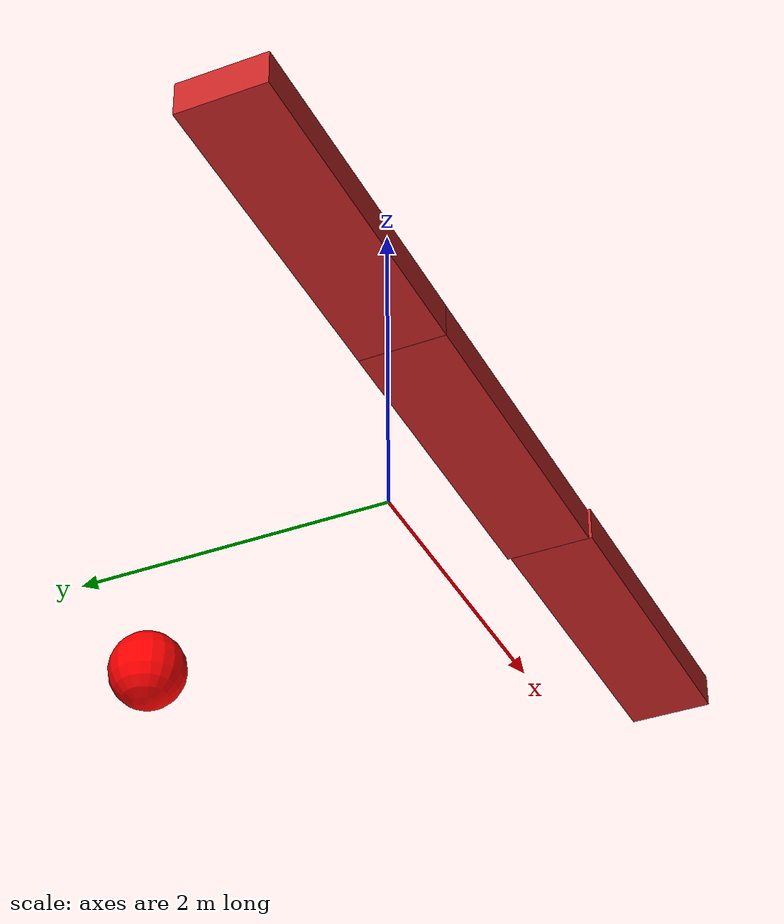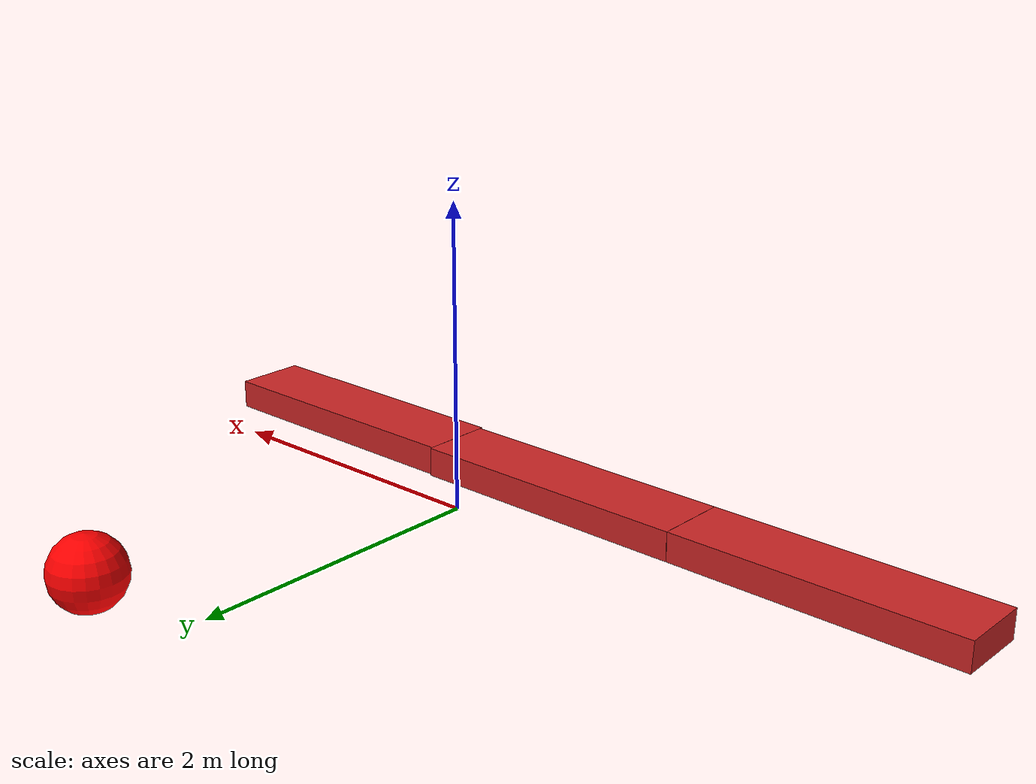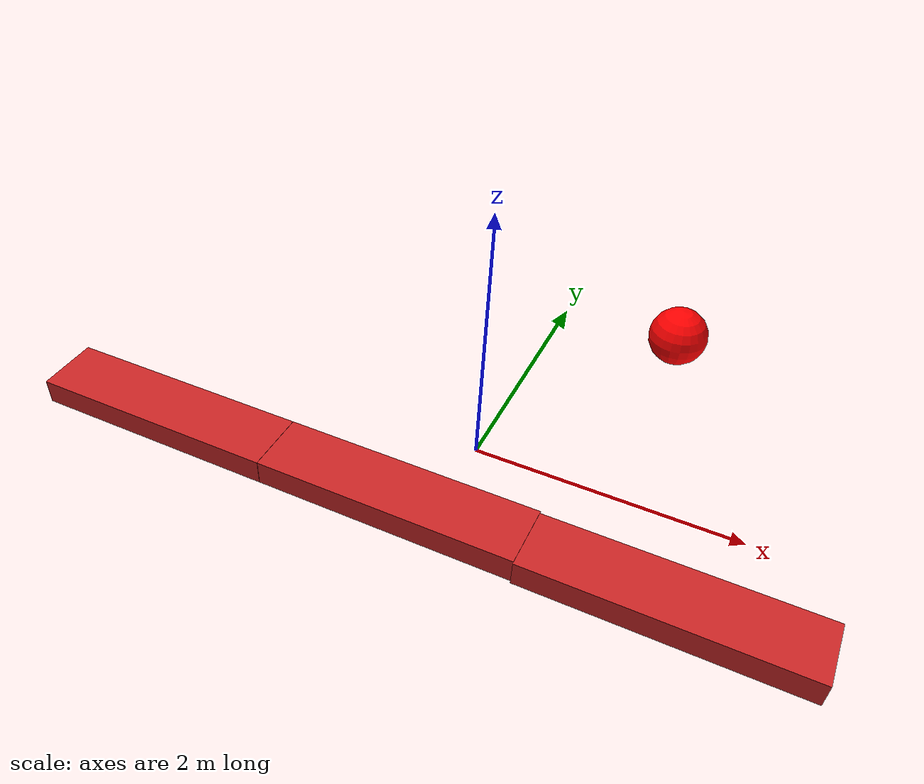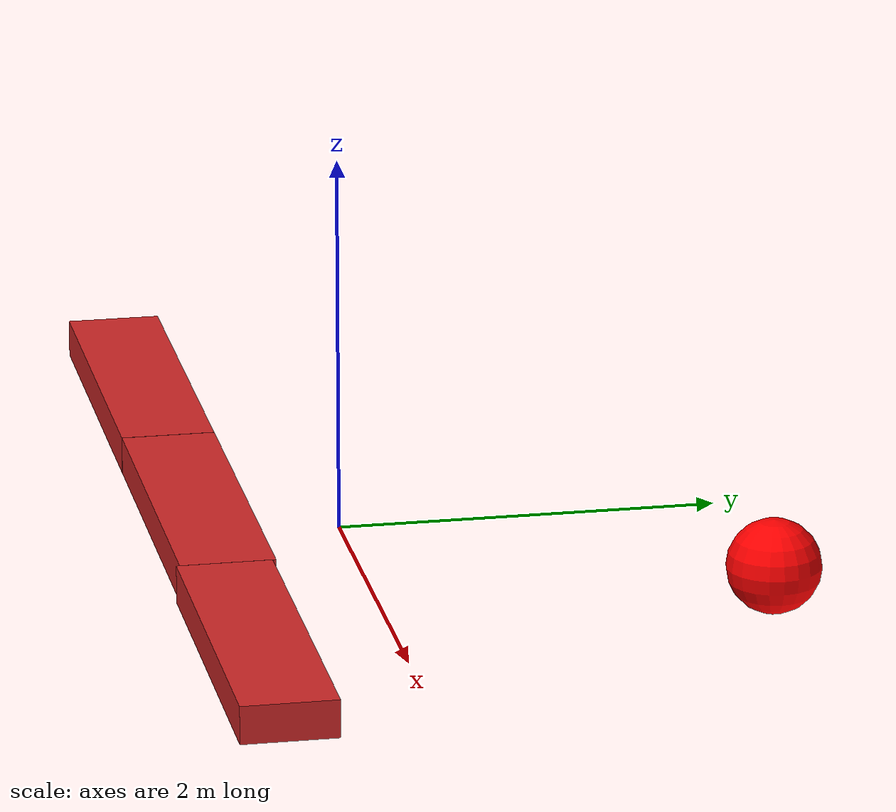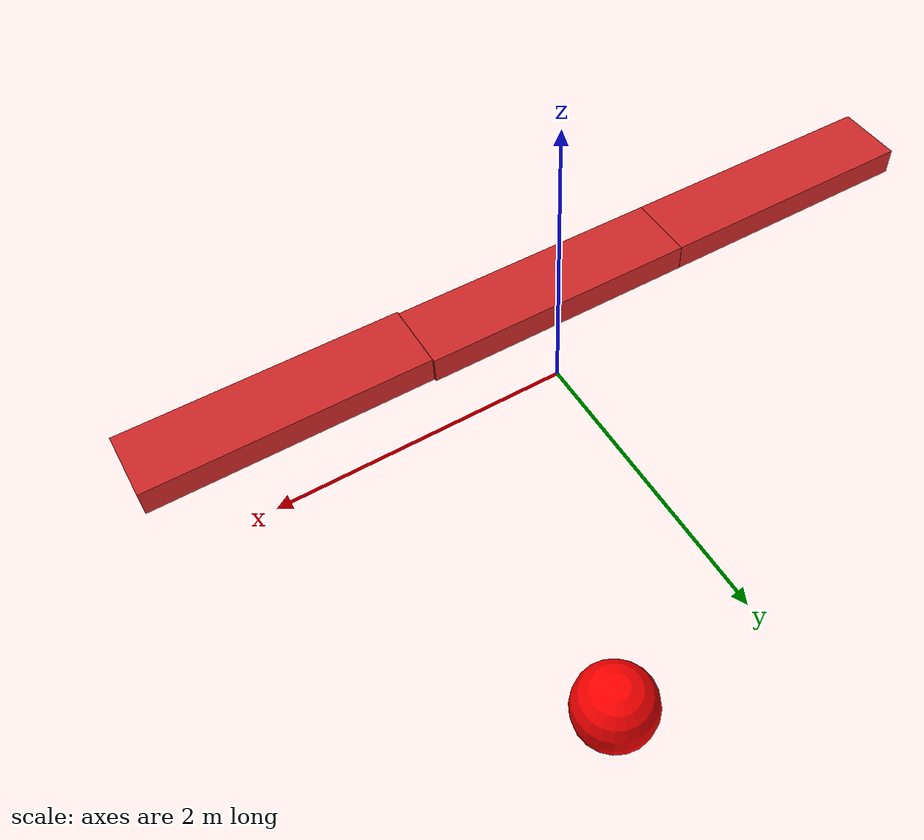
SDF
<?xml version='1.0'?>
<sdf version='1.7'>
  <model name='sidewalk'>
    <link name='link_0'>
      <inertial>
        <mass>1</mass>
        <inertia>
          <ixx>0.166667</ixx>
          <ixy>0</ixy>
          <ixz>0</ixz>
          <iyy>0.166667</iyy>
          <iyz>0</iyz>
          <izz>0.166667</izz>
        </inertia>
        <pose>0 0 0 0 -0 0</pose>
      </inertial>
      <pose>-2.32707 -0.694869 0 0 -0 0</pose>
      <gravity>1</gravity>
      <self_collide>0</self_collide>
      <kinematic>0</kinematic>
      <enable_wind>0</enable_wind>
      <visual name='visual'>
        <pose>0 0 0 0 -0 0</pose>
        <geometry>
          <box>
            <size>2 0.5 0.2</size>
          </box>
        </geometry>
        <material>
          <lighting>1</lighting>
          <script>
            <uri>file://media/materials/scripts/gazebo.material</uri>
            <name>Gazebo/Red</name>
          </script>
          <shader type='pixel'>
            <normal_map>__default__</normal_map>
          </shader>
          <ambient>0 1 0 1</ambient>
          <diffuse>0.7 0.7 0.7 1</diffuse>
          <specular>0.01 0.01 0.01 1</specular>
          <emissive>0 0 0 1</emissive>
        </material>
        <transparency>0</transparency>
        <cast_shadows>1</cast_shadows>
      </visual>
      <collision name='collision'>
        <laser_retro>0</laser_retro>
        <max_contacts>10</max_contacts>
        <pose>0 0 0 0 -0 0</pose>
        <geometry>
          <box>
            <size>1 1 1</size>
          </box>
        </geometry>
        <surface>
          <friction>
            <ode>
              <mu>1</mu>
              <mu2>1</mu2>
              <fdir1>0 0 0</fdir1>
              <slip1>0</slip1>
              <slip2>0</slip2>
            </ode>
            <torsional>
              <coefficient>1</coefficient>
              <patch_radius>0</patch_radius>
              <surface_radius>0</surface_radius>
              <use_patch_radius>1</use_patch_radius>
              <ode>
                <slip>0</slip>
              </ode>
            </torsional>
          </friction>
          <bounce>
            <restitution_coefficient>0</restitution_coefficient>
            <threshold>1e+06</threshold>
          </bounce>
          <contact>
            <collide_without_contact>0</collide_without_contact>
            <collide_without_contact_bitmask>1</collide_without_contact_bitmask>
            <collide_bitmask>1</collide_bitmask>
            <ode>
              <soft_cfm>0</soft_cfm>
              <soft_erp>0.2</soft_erp>
              <kp>1e+13</kp>
              <kd>1</kd>
              <max_vel>0.01</max_vel>
              <min_depth>0</min_depth>
            </ode>
            <bullet>
              <split_impulse>1</split_impulse>
              <split_impulse_penetration_threshold>-0.01</split_impulse_penetration_threshold>
              <soft_cfm>0</soft_cfm>
              <soft_erp>0.2</soft_erp>
              <kp>1e+13</kp>
              <kd>1</kd>
            </bullet>
          </contact>
        </surface>
      </collision>
    </link>
    <link name='link_0_clone'>
      <inertial>
        <mass>1</mass>
        <inertia>
          <ixx>0.166667</ixx>
          <ixy>0</ixy>
          <ixz>0</ixz>
          <iyy>0.166667</iyy>
          <iyz>0</iyz>
          <izz>0.166667</izz>
        </inertia>
        <pose>0 0 0 0 -0 0</pose>
      </inertial>
      <pose>-0.324907 -0.694369 0 0 -0 0</pose>
      <gravity>1</gravity>
      <self_collide>0</self_collide>
      <kinematic>0</kinematic>
      <enable_wind>0</enable_wind>
      <visual name='visual'>
        <pose>0 0 0 0 -0 0</pose>
        <geometry>
          <box>
            <size>2 0.5 0.2</size>
          </box>
        </geometry>
        <material>
          <lighting>1</lighting>
          <script>
            <uri>file://media/materials/scripts/gazebo.material</uri>
            <name>Gazebo/Red</name>
          </script>
          <shader type='pixel'>
            <normal_map>__default__</normal_map>
          </shader>
          <ambient>0 1 0 1</ambient>
          <diffuse>0.7 0.7 0.7 1</diffuse>
          <specular>0.01 0.01 0.01 1</specular>
          <emissive>0 0 0 1</emissive>
        </material>
        <transparency>0</transparency>
        <cast_shadows>1</cast_shadows>
      </visual>
      <collision name='collision'>
        <laser_retro>0</laser_retro>
        <max_contacts>10</max_contacts>
        <pose>0 0 0 0 -0 0</pose>
        <geometry>
          <box>
            <size>1 1 1</size>
          </box>
        </geometry>
        <surface>
          <friction>
            <ode>
              <mu>1</mu>
              <mu2>1</mu2>
              <fdir1>0 0 0</fdir1>
              <slip1>0</slip1>
              <slip2>0</slip2>
            </ode>
            <torsional>
              <coefficient>1</coefficient>
              <patch_radius>0</patch_radius>
              <surface_radius>0</surface_radius>
              <use_patch_radius>1</use_patch_radius>
              <ode>
                <slip>0</slip>
              </ode>
            </torsional>
          </friction>
          <bounce>
            <restitution_coefficient>0</restitution_coefficient>
            <threshold>1e+06</threshold>
          </bounce>
          <contact>
            <collide_without_contact>0</collide_without_contact>
            <collide_without_contact_bitmask>1</collide_without_contact_bitmask>
            <collide_bitmask>1</collide_bitmask>
            <ode>
              <soft_cfm>0</soft_cfm>
              <soft_erp>0.2</soft_erp>
              <kp>1e+13</kp>
              <kd>1</kd>
              <max_vel>0.01</max_vel>
              <min_depth>0</min_depth>
            </ode>
            <bullet>
              <split_impulse>1</split_impulse>
              <split_impulse_penetration_threshold>-0.01</split_impulse_penetration_threshold>
              <soft_cfm>0</soft_cfm>
              <soft_erp>0.2</soft_erp>
              <kp>1e+13</kp>
              <kd>1</kd>
            </bullet>
          </contact>
        </surface>
      </collision>
    </link>
    <link name='link_0_clone_clone'>
      <inertial>
        <mass>1</mass>
        <inertia>
          <ixx>0.166667</ixx>
          <ixy>0</ixy>
          <ixz>0</ixz>
          <iyy>0.166667</iyy>
          <iyz>0</iyz>
          <izz>0.166667</izz>
        </inertia>
        <pose>0 0 0 0 -0 0</pose>
      </inertial>
      <pose>1.67628 -0.71217 0 0 -0 0</pose>
      <gravity>1</gravity>
      <self_collide>0</self_collide>
      <kinematic>0</kinematic>
      <enable_wind>0</enable_wind>
      <visual name='visual'>
        <pose>0 0 0 0 -0 0</pose>
        <geometry>
          <box>
            <size>2 0.5 0.2</size>
          </box>
        </geometry>
        <material>
          <lighting>1</lighting>
          <script>
            <uri>file://media/materials/scripts/gazebo.material</uri>
            <name>Gazebo/Red</name>
          </script>
          <shader type='pixel'>
            <normal_map>__default__</normal_map>
          </shader>
          <ambient>0 1 0 1</ambient>
          <diffuse>0.7 0.7 0.7 1</diffuse>
          <specular>0.01 0.01 0.01 1</specular>
          <emissive>0 0 0 1</emissive>
        </material>
        <transparency>0</transparency>
        <cast_shadows>1</cast_shadows>
      </visual>
      <collision name='collision'>
        <laser_retro>0</laser_retro>
        <max_contacts>10</max_contacts>
        <pose>0 0 0 0 -0 0</pose>
        <geometry>
          <box>
            <size>1 1 1</size>
          </box>
        </geometry>
        <surface>
          <friction>
            <ode>
              <mu>1</mu>
              <mu2>1</mu2>
              <fdir1>0 0 0</fdir1>
              <slip1>0</slip1>
              <slip2>0</slip2>
            </ode>
            <torsional>
              <coefficient>1</coefficient>
              <patch_radius>0</patch_radius>
              <surface_radius>0</surface_radius>
              <use_patch_radius>1</use_patch_radius>
              <ode>
                <slip>0</slip>
              </ode>
            </torsional>
          </friction>
          <bounce>
            <restitution_coefficient>0</restitution_coefficient>
            <threshold>1e+06</threshold>
          </bounce>
          <contact>
            <collide_without_contact>0</collide_without_contact>
            <collide_without_contact_bitmask>1</collide_without_contact_bitmask>
            <collide_bitmask>1</collide_bitmask>
            <ode>
              <soft_cfm>0</soft_cfm>
              <soft_erp>0.2</soft_erp>
              <kp>1e+13</kp>
              <kd>1</kd>
              <max_vel>0.01</max_vel>
              <min_depth>0</min_depth>
            </ode>
            <bullet>
              <split_impulse>1</split_impulse>
              <split_impulse_penetration_threshold>-0.01</split_impulse_penetration_threshold>
              <soft_cfm>0</soft_cfm>
              <soft_erp>0.2</soft_erp>
              <kp>1e+13</kp>
              <kd>1</kd>
            </bullet>
          </contact>
        </surface>
      </collision>
    </link>
    <link name='link_1'>
      <inertial>
        <mass>1</mass>
        <inertia>
          <ixx>0.1</ixx>
          <ixy>0</ixy>
          <ixz>0</ixz>
          <iyy>0.1</iyy>
          <iyz>0</iyz>
          <izz>0.1</izz>
        </inertia>
        <pose>0 0 0 0 -0 0</pose>
      </inertial>
      <pose>0.975692 2.10141 0 0 -0 0</pose>
      <gravity>1</gravity>
      <self_collide>0</self_collide>
      <kinematic>0</kinematic>
      <enable_wind>0</enable_wind>
      <visual name='visual'>
        <pose>0 0 0 0 -0 0</pose>
        <geometry>
          <sphere>
            <radius>0.25</radius>
          </sphere>
        </geometry>
        <material>
          <lighting>1</lighting>
          <script>
            <uri>file://media/materials/scripts/gazebo.material</uri>
            <name>Gazebo/Grey</name>
          </script>
          <shader type='pixel'>
            <normal_map>__default__</normal_map>
          </shader>
          <ambient>1 0 0 1</ambient>
          <diffuse>0.7 0.7 0.7 1</diffuse>
          <specular>0.01 0.01 0.01 1</specular>
          <emissive>0 0 0 1</emissive>
        </material>
        <transparency>0</transparency>
        <cast_shadows>1</cast_shadows>
      </visual>
      <collision name='collision'>
        <laser_retro>0</laser_retro>
        <max_contacts>10</max_contacts>
        <pose>0 0 0 0 -0 0</pose>
        <geometry>
          <sphere>
            <radius>0.5</radius>
          </sphere>
        </geometry>
        <surface>
          <friction>
            <ode>
              <mu>1</mu>
              <mu2>1</mu2>
              <fdir1>0 0 0</fdir1>
              <slip1>0</slip1>
              <slip2>0</slip2>
            </ode>
            <torsional>
              <coefficient>1</coefficient>
              <patch_radius>0</patch_radius>
              <surface_radius>0</surface_radius>
              <use_patch_radius>1</use_patch_radius>
              <ode>
                <slip>0</slip>
              </ode>
            </torsional>
          </friction>
          <bounce>
            <restitution_coefficient>0</restitution_coefficient>
            <threshold>1e+06</threshold>
          </bounce>
          <contact>
            <collide_without_contact>0</collide_without_contact>
            <collide_without_contact_bitmask>1</collide_without_contact_bitmask>
            <collide_bitmask>1</collide_bitmask>
            <ode>
              <soft_cfm>0</soft_cfm>
              <soft_erp>0.2</soft_erp>
              <kp>1e+13</kp>
              <kd>1</kd>
              <max_vel>0.01</max_vel>
              <min_depth>0</min_depth>
            </ode>
            <bullet>
              <split_impulse>1</split_impulse>
              <split_impulse_penetration_threshold>-0.01</split_impulse_penetration_threshold>
              <soft_cfm>0</soft_cfm>
              <soft_erp>0.2</soft_erp>
              <kp>1e+13</kp>
              <kd>1</kd>
            </bullet>
          </contact>
        </surface>
      </collision>
    </link>
    <static>0</static>
    <allow_auto_disable>1</allow_auto_disable>
  </model>
</sdf>
